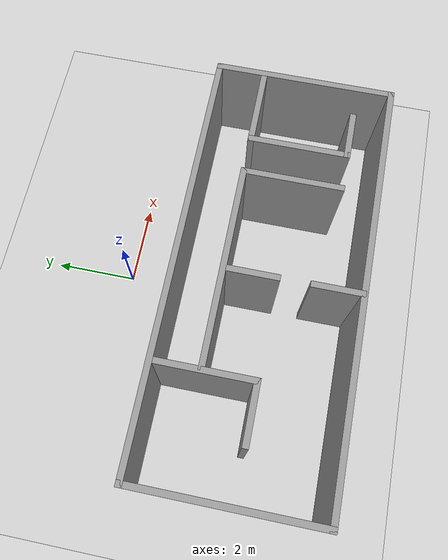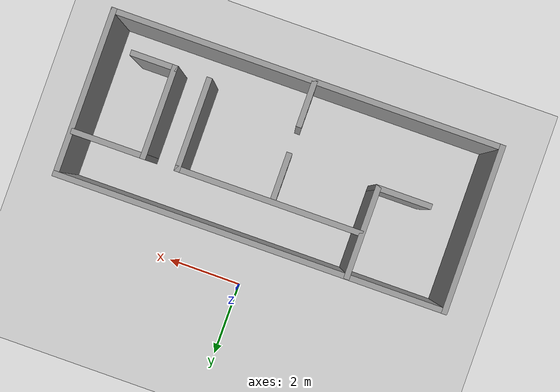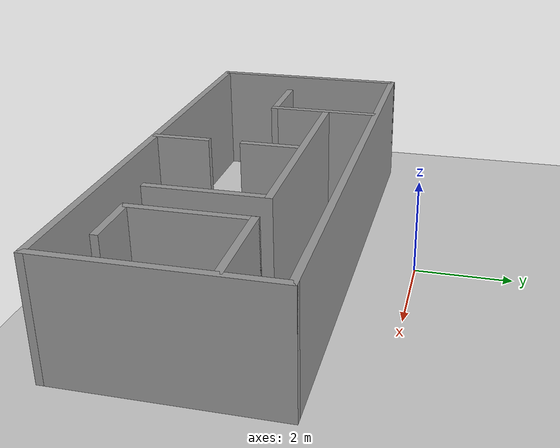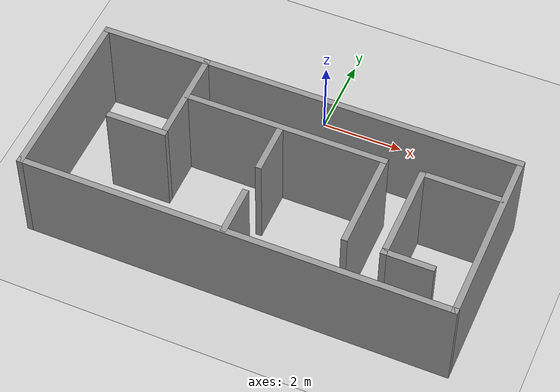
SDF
<sdf version='1.7'>
  <world name='default'>
    <light name='sun' type='directional'>
      <cast_shadows>1</cast_shadows>
      <pose>0 0 10 0 -0 0</pose>
      <diffuse>0.8 0.8 0.8 1</diffuse>
      <specular>0.2 0.2 0.2 1</specular>
      <attenuation>
        <range>1000</range>
        <constant>0.9</constant>
        <linear>0.01</linear>
        <quadratic>0.001</quadratic>
      </attenuation>
      <direction>-0.5 0.1 -0.9</direction>
      <spot>
        <inner_angle>0</inner_angle>
        <outer_angle>0</outer_angle>
        <falloff>0</falloff>
      </spot>
    </light>
    <model name='ground_plane'>
      <static>1</static>
      <link name='link'>
        <collision name='collision'>
          <geometry>
            <plane>
              <normal>0 0 1</normal>
              <size>100 100</size>
            </plane>
          </geometry>
          <surface>
            <contact>
              <collide_bitmask>65535</collide_bitmask>
              <ode/>
            </contact>
            <friction>
              <ode>
                <mu>100</mu>
                <mu2>50</mu2>
              </ode>
              <torsional>
                <ode/>
              </torsional>
            </friction>
            <bounce/>
          </surface>
          <max_contacts>10</max_contacts>
        </collision>
        <visual name='visual'>
          <cast_shadows>0</cast_shadows>
          <geometry>
            <plane>
              <normal>0 0 1</normal>
              <size>100 100</size>
            </plane>
          </geometry>
          <material>
            <script>
              <uri>file://media/materials/scripts/gazebo.material</uri>
              <name>Gazebo/Grey</name>
            </script>
          </material>
        </visual>
        <self_collide>0</self_collide>
        <enable_wind>0</enable_wind>
        <kinematic>0</kinematic>
      </link>
    </model>
    <gravity>0 0 -9.8</gravity>
    <magnetic_field>6e-06 2.3e-05 -4.2e-05</magnetic_field>
    <atmosphere type='adiabatic'/>
    <physics type='ode'>
      <max_step_size>0.001</max_step_size>
      <real_time_factor>1</real_time_factor>
      <real_time_update_rate>1000</real_time_update_rate>
    </physics>
    <scene>
      <ambient>0.4 0.4 0.4 1</ambient>
      <background>0.7 0.7 0.7 1</background>
      <shadows>1</shadows>
    </scene>
    <audio>
      <device>default</device>
    </audio>
    <wind/>
    <spherical_coordinates>
      <surface_model>EARTH_WGS84</surface_model>
      <latitude_deg>0</latitude_deg>
      <longitude_deg>0</longitude_deg>
      <elevation>0</elevation>
      <heading_deg>0</heading_deg>
    </spherical_coordinates>
    <model name='yozora_world.world'>
      <pose>0.055 -2.8575 0 0 -0 0</pose>
      <link name='Wall_0'>
        <collision name='Wall_0_Collision'>
          <geometry>
            <box>
              <size>10.5 0.15 2.5</size>
            </box>
          </geometry>
          <pose>0 0 1.25 0 -0 0</pose>
          <max_contacts>10</max_contacts>
          <surface>
            <contact>
              <ode/>
            </contact>
            <bounce/>
            <friction>
              <torsional>
                <ode/>
              </torsional>
              <ode/>
            </friction>
          </surface>
        </collision>
        <visual name='Wall_0_Visual'>
          <pose>0 0 1.25 0 -0 0</pose>
          <geometry>
            <box>
              <size>10.5 0.15 2.5</size>
            </box>
          </geometry>
          <material>
            <script>
              <uri>file://media/materials/scripts/gazebo.material</uri>
              <name>Gazebo/Grey</name>
            </script>
            <ambient>1 1 1 1</ambient>
          </material>
          <meta>
            <layer>0</layer>
          </meta>
        </visual>
        <pose>-0 1.5675 0 0 -0 0</pose>
        <self_collide>0</self_collide>
        <enable_wind>0</enable_wind>
        <kinematic>0</kinematic>
      </link>
      <link name='Wall_1'>
        <collision name='Wall_1_Collision'>
          <geometry>
            <box>
              <size>4.5 0.15 2.5</size>
            </box>
          </geometry>
          <pose>0 0 1.25 0 -0 0</pose>
          <max_contacts>10</max_contacts>
          <surface>
            <contact>
              <ode/>
            </contact>
            <bounce/>
            <friction>
              <torsional>
                <ode/>
              </torsional>
              <ode/>
            </friction>
          </surface>
        </collision>
        <visual name='Wall_1_Visual'>
          <pose>0 0 1.25 0 -0 0</pose>
          <geometry>
            <box>
              <size>4.5 0.15 2.5</size>
            </box>
          </geometry>
          <material>
            <script>
              <uri>file://media/materials/scripts/gazebo.material</uri>
              <name>Gazebo/Grey</name>
            </script>
            <ambient>1 1 1 1</ambient>
          </material>
          <meta>
            <layer>0</layer>
          </meta>
        </visual>
        <pose>5.175 -0.6075 0 0 -0 -1.5708</pose>
        <self_collide>0</self_collide>
        <enable_wind>0</enable_wind>
        <kinematic>0</kinematic>
      </link>
      <link name='Wall_11'>
        <collision name='Wall_11_Collision'>
          <geometry>
            <box>
              <size>2 0.15 2.5</size>
            </box>
          </geometry>
          <pose>0 0 1.25 0 -0 0</pose>
          <max_contacts>10</max_contacts>
          <surface>
            <contact>
              <ode/>
            </contact>
            <bounce/>
            <friction>
              <torsional>
                <ode/>
              </torsional>
              <ode/>
            </friction>
          </surface>
        </collision>
        <visual name='Wall_11_Visual'>
          <pose>0 0 1.25 0 -0 0</pose>
          <geometry>
            <box>
              <size>2 0.15 2.5</size>
            </box>
          </geometry>
          <material>
            <script>
              <uri>file://media/materials/scripts/gazebo.material</uri>
              <name>Gazebo/Grey</name>
            </script>
            <ambient>1 1 1 1</ambient>
          </material>
          <meta>
            <layer>0</layer>
          </meta>
        </visual>
        <pose>4.17 0.4175 0 0 -0 0</pose>
        <self_collide>0</self_collide>
        <enable_wind>0</enable_wind>
        <kinematic>0</kinematic>
      </link>
      <link name='Wall_13'>
        <collision name='Wall_13_Collision'>
          <geometry>
            <box>
              <size>2.5 0.15 2.5</size>
            </box>
          </geometry>
          <pose>0 0 1.25 0 -0 0</pose>
          <max_contacts>10</max_contacts>
          <surface>
            <contact>
              <ode/>
            </contact>
            <bounce/>
            <friction>
              <torsional>
                <ode/>
              </torsional>
              <ode/>
            </friction>
          </surface>
        </collision>
        <visual name='Wall_13_Visual'>
          <pose>0 0 1.25 0 -0 0</pose>
          <geometry>
            <box>
              <size>2.5 0.15 2.5</size>
            </box>
          </geometry>
          <material>
            <script>
              <uri>file://media/materials/scripts/gazebo.material</uri>
              <name>Gazebo/Grey</name>
            </script>
            <ambient>1 1 1 1</ambient>
          </material>
          <meta>
            <layer>0</layer>
          </meta>
        </visual>
        <pose>3.245 -0.7575 0 0 -0 -1.5708</pose>
        <self_collide>0</self_collide>
        <enable_wind>0</enable_wind>
        <kinematic>0</kinematic>
      </link>
      <link name='Wall_14'>
        <collision name='Wall_14_Collision'>
          <geometry>
            <box>
              <size>1.25 0.15 2.5</size>
            </box>
          </geometry>
          <pose>0 0 1.25 0 -0 0</pose>
          <max_contacts>10</max_contacts>
          <surface>
            <contact>
              <ode/>
            </contact>
            <bounce/>
            <friction>
              <torsional>
                <ode/>
              </torsional>
              <ode/>
            </friction>
          </surface>
        </collision>
        <visual name='Wall_14_Visual'>
          <pose>0 0 1.25 0 -0 0</pose>
          <geometry>
            <box>
              <size>1.25 0.15 2.5</size>
            </box>
          </geometry>
          <material>
            <script>
              <uri>file://media/materials/scripts/gazebo.material</uri>
              <name>Gazebo/Grey</name>
            </script>
            <ambient>1 1 1 1</ambient>
          </material>
          <meta>
            <layer>0</layer>
          </meta>
        </visual>
        <pose>3.795 -1.9325 0 0 -0 0</pose>
        <self_collide>0</self_collide>
        <enable_wind>0</enable_wind>
        <kinematic>0</kinematic>
      </link>
      <link name='Wall_16'>
        <collision name='Wall_16_Collision'>
          <geometry>
            <box>
              <size>1.25 0.15 2.5</size>
            </box>
          </geometry>
          <pose>0 0 1.25 0 -0 0</pose>
          <max_contacts>10</max_contacts>
          <surface>
            <contact>
              <ode/>
            </contact>
            <bounce/>
            <friction>
              <torsional>
                <ode/>
              </torsional>
              <ode/>
            </friction>
          </surface>
        </collision>
        <visual name='Wall_16_Visual'>
          <pose>0 0 1.25 0 -0 0</pose>
          <geometry>
            <box>
              <size>1.25 0.15 2.5</size>
            </box>
          </geometry>
          <material>
            <script>
              <uri>file://media/materials/scripts/gazebo.material</uri>
              <name>Gazebo/Grey</name>
            </script>
            <ambient>1 1 1 1</ambient>
          </material>
          <meta>
            <layer>0</layer>
          </meta>
        </visual>
        <pose>-0.185 -0.2625 0 0 -0 -1.5708</pose>
        <self_collide>0</self_collide>
        <enable_wind>0</enable_wind>
        <kinematic>0</kinematic>
      </link>
      <link name='Wall_18'>
        <collision name='Wall_18_Collision'>
          <geometry>
            <box>
              <size>1.25 0.15 2.5</size>
            </box>
          </geometry>
          <pose>0 0 1.25 0 -0 0</pose>
          <max_contacts>10</max_contacts>
          <surface>
            <contact>
              <ode/>
            </contact>
            <bounce/>
            <friction>
              <torsional>
                <ode/>
              </torsional>
              <ode/>
            </friction>
          </surface>
        </collision>
        <visual name='Wall_18_Visual'>
          <pose>0 0 1.25 0 -0 0</pose>
          <geometry>
            <box>
              <size>1.25 0.15 2.5</size>
            </box>
          </geometry>
          <material>
            <script>
              <uri>file://media/materials/scripts/gazebo.material</uri>
              <name>Gazebo/Grey</name>
            </script>
            <ambient>1 1 1 1</ambient>
          </material>
          <meta>
            <layer>0</layer>
          </meta>
        </visual>
        <pose>-0.185 -2.1925 0 0 -0 1.5708</pose>
        <self_collide>0</self_collide>
        <enable_wind>0</enable_wind>
        <kinematic>0</kinematic>
      </link>
      <link name='Wall_2'>
        <collision name='Wall_2_Collision'>
          <geometry>
            <box>
              <size>10.5 0.15 2.5</size>
            </box>
          </geometry>
          <pose>0 0 1.25 0 -0 0</pose>
          <max_contacts>10</max_contacts>
          <surface>
            <contact>
              <ode/>
            </contact>
            <bounce/>
            <friction>
              <torsional>
                <ode/>
              </torsional>
              <ode/>
            </friction>
          </surface>
        </collision>
        <visual name='Wall_2_Visual'>
          <pose>0 0 1.25 0 -0 0</pose>
          <geometry>
            <box>
              <size>10.5 0.15 2.5</size>
            </box>
          </geometry>
          <material>
            <script>
              <uri>file://media/materials/scripts/gazebo.material</uri>
              <name>Gazebo/Grey</name>
            </script>
            <ambient>1 1 1 1</ambient>
          </material>
          <meta>
            <layer>0</layer>
          </meta>
        </visual>
        <pose>-0 -2.7825 0 0 -0 3.14159</pose>
        <self_collide>0</self_collide>
        <enable_wind>0</enable_wind>
        <kinematic>0</kinematic>
      </link>
      <link name='Wall_3'>
        <collision name='Wall_3_Collision'>
          <geometry>
            <box>
              <size>4.5 0.15 2.5</size>
            </box>
          </geometry>
          <pose>0 0 1.25 0 -0 0</pose>
          <max_contacts>10</max_contacts>
          <surface>
            <contact>
              <ode/>
            </contact>
            <bounce/>
            <friction>
              <torsional>
                <ode/>
              </torsional>
              <ode/>
            </friction>
          </surface>
        </collision>
        <visual name='Wall_3_Visual'>
          <pose>0 0 1.25 0 -0 0</pose>
          <geometry>
            <box>
              <size>4.5 0.15 2.5</size>
            </box>
          </geometry>
          <material>
            <script>
              <uri>file://media/materials/scripts/gazebo.material</uri>
              <name>Gazebo/Grey</name>
            </script>
            <ambient>1 1 1 1</ambient>
          </material>
          <meta>
            <layer>0</layer>
          </meta>
        </visual>
        <pose>-5.175 -0.6075 0 0 -0 1.5708</pose>
        <self_collide>0</self_collide>
        <enable_wind>0</enable_wind>
        <kinematic>0</kinematic>
      </link>
      <link name='Wall_5'>
        <collision name='Wall_5_Collision'>
          <geometry>
            <box>
              <size>2.5 0.15 2.5</size>
            </box>
          </geometry>
          <pose>0 0 1.25 0 -0 0</pose>
          <max_contacts>10</max_contacts>
          <surface>
            <contact>
              <ode/>
            </contact>
            <bounce/>
            <friction>
              <torsional>
                <ode/>
              </torsional>
              <ode/>
            </friction>
          </surface>
        </collision>
        <visual name='Wall_5_Visual'>
          <pose>0 0 1.25 0 -0 0</pose>
          <geometry>
            <box>
              <size>2.5 0.15 2.5</size>
            </box>
          </geometry>
          <material>
            <script>
              <uri>file://media/materials/scripts/gazebo.material</uri>
              <name>Gazebo/Grey</name>
            </script>
            <ambient>1 1 1 1</ambient>
          </material>
          <meta>
            <layer>0</layer>
          </meta>
        </visual>
        <pose>-2.575 0.3825 0 0 -0 -1.5708</pose>
        <self_collide>0</self_collide>
        <enable_wind>0</enable_wind>
        <kinematic>0</kinematic>
      </link>
      <link name='Wall_6'>
        <collision name='Wall_6_Collision'>
          <geometry>
            <box>
              <size>1.5 0.15 2.5</size>
            </box>
          </geometry>
          <pose>0 0 1.25 0 -0 0</pose>
          <max_contacts>10</max_contacts>
          <surface>
            <contact>
              <ode/>
            </contact>
            <bounce/>
            <friction>
              <torsional>
                <ode/>
              </torsional>
              <ode/>
            </friction>
          </surface>
        </collision>
        <visual name='Wall_6_Visual'>
          <pose>0 0 1.25 0 -0 0</pose>
          <geometry>
            <box>
              <size>1.5 0.15 2.5</size>
            </box>
          </geometry>
          <material>
            <script>
              <uri>file://media/materials/scripts/gazebo.material</uri>
              <name>Gazebo/Grey</name>
            </script>
            <ambient>1 1 1 1</ambient>
          </material>
          <meta>
            <layer>0</layer>
          </meta>
        </visual>
        <pose>-3.25 -0.7925 0 0 -0 3.14159</pose>
        <self_collide>0</self_collide>
        <enable_wind>0</enable_wind>
        <kinematic>0</kinematic>
      </link>
      <link name='Wall_8'>
        <collision name='Wall_8_Collision'>
          <geometry>
            <box>
              <size>5 0.15 2.5</size>
            </box>
          </geometry>
          <pose>0 0 1.25 0 -0 0</pose>
          <max_contacts>10</max_contacts>
          <surface>
            <contact>
              <ode/>
            </contact>
            <bounce/>
            <friction>
              <torsional>
                <ode/>
              </torsional>
              <ode/>
            </friction>
          </surface>
        </collision>
        <visual name='Wall_8_Visual'>
          <pose>0 0 1.25 0 -0 0</pose>
          <geometry>
            <box>
              <size>5 0.15 2.5</size>
            </box>
          </geometry>
          <material>
            <script>
              <uri>file://media/materials/scripts/gazebo.material</uri>
              <name>Gazebo/Grey</name>
            </script>
            <ambient>1 1 1 1</ambient>
          </material>
          <meta>
            <layer>0</layer>
          </meta>
        </visual>
        <pose>-0.09 0.4275 0 0 -0 0</pose>
        <self_collide>0</self_collide>
        <enable_wind>0</enable_wind>
        <kinematic>0</kinematic>
      </link>
      <link name='Wall_9'>
        <collision name='Wall_9_Collision'>
          <geometry>
            <box>
              <size>2.5 0.15 2.5</size>
            </box>
          </geometry>
          <pose>0 0 1.25 0 -0 0</pose>
          <max_contacts>10</max_contacts>
          <surface>
            <contact>
              <ode/>
            </contact>
            <bounce/>
            <friction>
              <torsional>
                <ode/>
              </torsional>
              <ode/>
            </friction>
          </surface>
        </collision>
        <visual name='Wall_9_Visual'>
          <pose>0 0 1.25 0 -0 0</pose>
          <geometry>
            <box>
              <size>2.5 0.15 2.5</size>
            </box>
          </geometry>
          <material>
            <script>
              <uri>file://media/materials/scripts/gazebo.material</uri>
              <name>Gazebo/Grey</name>
            </script>
            <ambient>1 1 1 1</ambient>
          </material>
          <meta>
            <layer>0</layer>
          </meta>
        </visual>
        <pose>2.335 -0.7475 0 0 -0 -1.5708</pose>
        <self_collide>0</self_collide>
        <enable_wind>0</enable_wind>
        <kinematic>0</kinematic>
      </link>
      <static>1</static>
    </model>
    <gui fullscreen='0'>
      <camera name='user_camera'>
        <pose>8.27704 5.01627 7.90281 -0 0.776 -2.73119</pose>
        <view_controller>orbit</view_controller>
        <projection_type>perspective</projection_type>
      </camera>
    </gui>
  </world>
</sdf>
